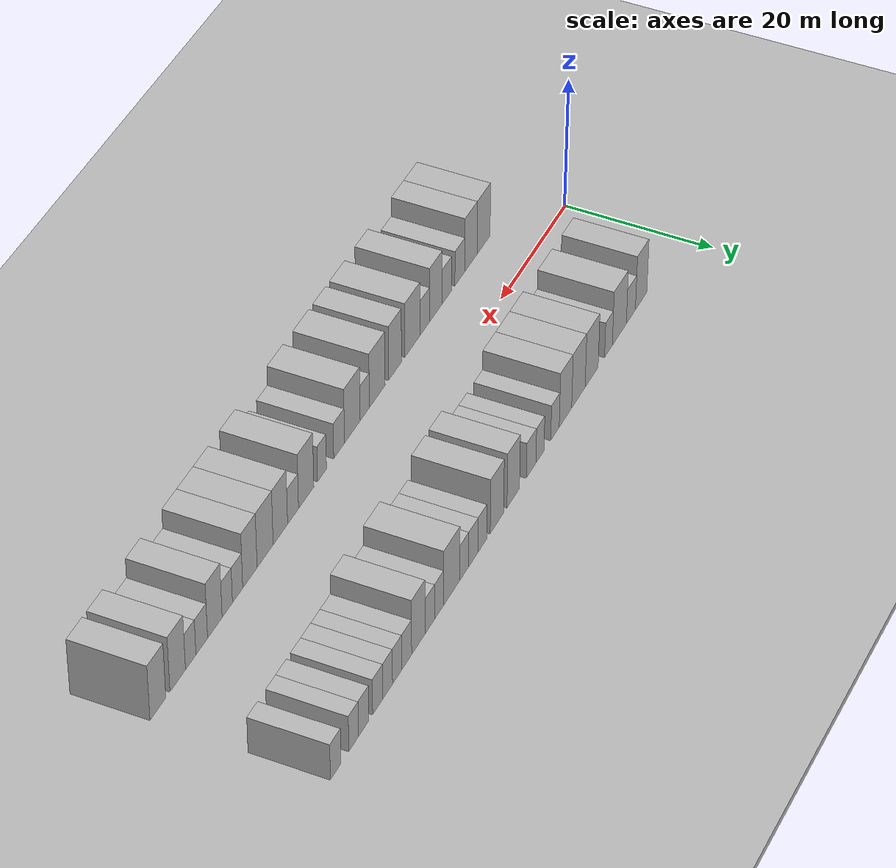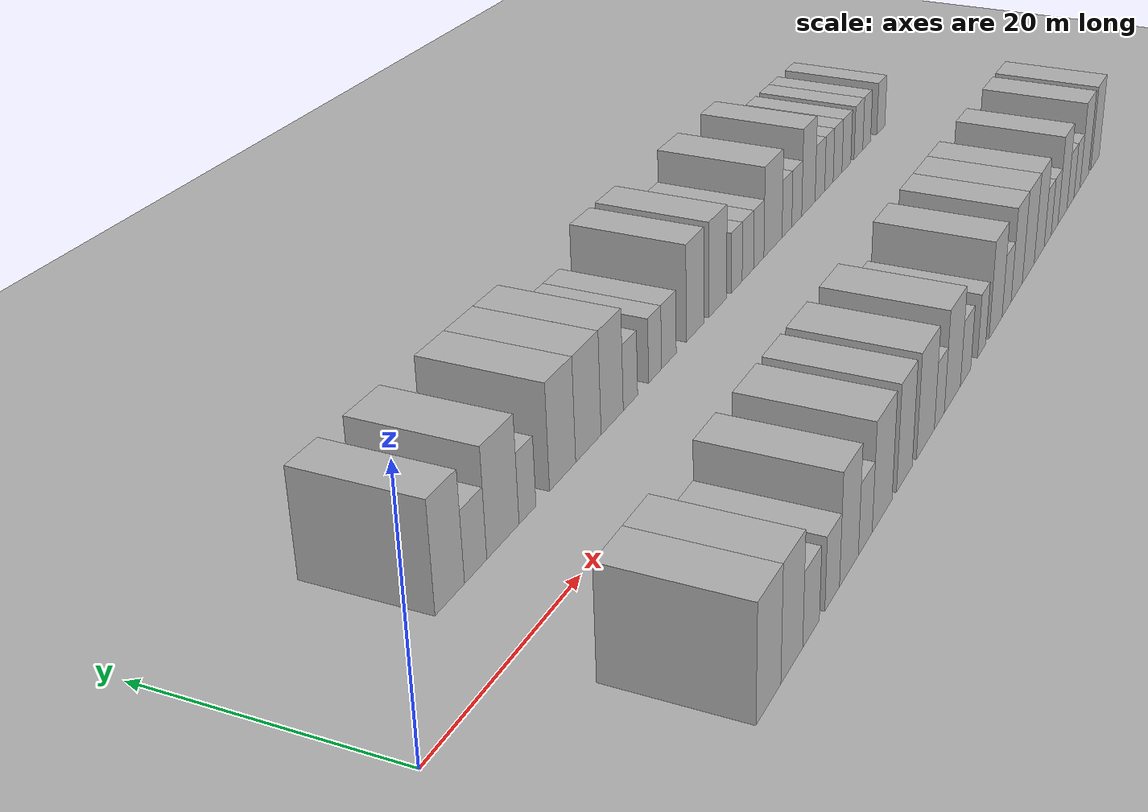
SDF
<sdf version="1.6">
 <world name="default">
  <include><name>ground_plane_1</name><uri>model://HANNAS_ground_plane</uri></include>
  <include>
   <name>ground_plane_2</name>
   <uri>model://HANNAS_ground_plane</uri>
   <pose>100 0 0  0 0 0</pose>
  </include>
  <model name="building_1">
   <static>1</static>
   <pose>13.8384 11.0000 0 0.000000 0.000000 1.570796</pose>
   <link name="link">
    <pose>0 0 4.50 0 0 0</pose>
    <collision name="collision"><geometry><box><size>10.0000 3.6767 9.0000</size></box></geometry></collision>
    <visual name="visual">
     <cast_shadows>0</cast_shadows>
     <geometry><box><size>10.0000 3.6767 9.0000</size></box></geometry>
     <material>
      <script>
       <uri>model://HANNAS_wall/materials/scripts</uri>
       <uri>model://HANNAS_wall/materials/textures</uri>
       <name>vrc/HANNAS_wall</name>
      </script>
     </material>
    </visual>
   </link>
  </model>
  <model name="building_2">
   <static>1</static>
   <pose>17.1283 11.0000 0 0.000000 0.000000 1.570796</pose>
   <link name="link">
    <pose>0 0 3.00 0 0 0</pose>
    <collision name="collision"><geometry><box><size>10.0000 2.9031 6.0000</size></box></geometry></collision>
    <visual name="visual">
     <cast_shadows>0</cast_shadows>
     <geometry><box><size>10.0000 2.9031 6.0000</size></box></geometry>
     <material>
      <script>
       <uri>model://HANNAS_wall/materials/scripts</uri>
       <uri>model://HANNAS_wall/materials/textures</uri>
       <name>vrc/HANNAS_wall</name>
      </script>
     </material>
    </visual>
   </link>
  </model>
  <model name="building_3">
   <static>1</static>
   <pose>20.7933 11.0000 0 0.000000 0.000000 1.570796</pose>
   <link name="link">
    <pose>0 0 4.50 0 0 0</pose>
    <collision name="collision"><geometry><box><size>10.0000 4.4269 9.0000</size></box></geometry></collision>
    <visual name="visual">
     <cast_shadows>0</cast_shadows>
     <geometry><box><size>10.0000 4.4269 9.0000</size></box></geometry>
     <material>
      <script>
       <uri>model://HANNAS_wall/materials/scripts</uri>
       <uri>model://HANNAS_wall/materials/textures</uri>
       <name>vrc/HANNAS_wall</name>
      </script>
     </material>
    </visual>
   </link>
  </model>
  <model name="building_4">
   <static>1</static>
   <pose>24.2196 11.0000 0 0.000000 0.000000 1.570796</pose>
   <link name="link">
    <pose>0 0 3.00 0 0 0</pose>
    <collision name="collision"><geometry><box><size>10.0000 2.4257 6.0000</size></box></geometry></collision>
    <visual name="visual">
     <cast_shadows>0</cast_shadows>
     <geometry><box><size>10.0000 2.4257 6.0000</size></box></geometry>
     <material>
      <script>
       <uri>model://HANNAS_wall/materials/scripts</uri>
       <uri>model://HANNAS_wall/materials/textures</uri>
       <name>vrc/HANNAS_wall</name>
      </script>
     </material>
    </visual>
   </link>
  </model>
  <model name="building_5">
   <static>1</static>
   <pose>29.4477 11.0000 0 0.000000 0.000000 1.570796</pose>
   <link name="link">
    <pose>0 0 4.50 0 0 0</pose>
    <collision name="collision"><geometry><box><size>10.0000 4.0304 9.0000</size></box></geometry></collision>
    <visual name="visual">
     <cast_shadows>0</cast_shadows>
     <geometry><box><size>10.0000 4.0304 9.0000</size></box></geometry>
     <material>
      <script>
       <uri>model://HANNAS_wall/materials/scripts</uri>
       <uri>model://HANNAS_wall/materials/textures</uri>
       <name>vrc/HANNAS_wall</name>
      </script>
     </material>
    </visual>
   </link>
  </model>
  <model name="building_6">
   <static>1</static>
   <pose>33.5247 11.0000 0 0.000000 0.000000 1.570796</pose>
   <link name="link">
    <pose>0 0 4.50 0 0 0</pose>
    <collision name="collision"><geometry><box><size>10.0000 4.1236 9.0000</size></box></geometry></collision>
    <visual name="visual">
     <cast_shadows>0</cast_shadows>
     <geometry><box><size>10.0000 4.1236 9.0000</size></box></geometry>
     <material>
      <script>
       <uri>model://HANNAS_wall/materials/scripts</uri>
       <uri>model://HANNAS_wall/materials/textures</uri>
       <name>vrc/HANNAS_wall</name>
      </script>
     </material>
    </visual>
   </link>
  </model>
  <model name="building_7">
   <static>1</static>
   <pose>37.4718 11.0000 0 0.000000 0.000000 1.570796</pose>
   <link name="link">
    <pose>0 0 4.50 0 0 0</pose>
    <collision name="collision"><geometry><box><size>10.0000 3.7705 9.0000</size></box></geometry></collision>
    <visual name="visual">
     <cast_shadows>0</cast_shadows>
     <geometry><box><size>10.0000 3.7705 9.0000</size></box></geometry>
     <material>
      <script>
       <uri>model://HANNAS_wall/materials/scripts</uri>
       <uri>model://HANNAS_wall/materials/textures</uri>
       <name>vrc/HANNAS_wall</name>
      </script>
     </material>
    </visual>
   </link>
  </model>
  <model name="building_8">
   <static>1</static>
   <pose>40.6298 11.0000 0 0.000000 0.000000 1.570796</pose>
   <link name="link">
    <pose>0 0 3.00 0 0 0</pose>
    <collision name="collision"><geometry><box><size>10.0000 2.5456 6.0000</size></box></geometry></collision>
    <visual name="visual">
     <cast_shadows>0</cast_shadows>
     <geometry><box><size>10.0000 2.5456 6.0000</size></box></geometry>
     <material>
      <script>
       <uri>model://HANNAS_wall/materials/scripts</uri>
       <uri>model://HANNAS_wall/materials/textures</uri>
       <name>vrc/HANNAS_wall</name>
      </script>
     </material>
    </visual>
   </link>
  </model>
  <model name="building_9">
   <static>1</static>
   <pose>45.1098 11.0000 0 0.000000 0.000000 1.570796</pose>
   <link name="link">
    <pose>0 0 3.00 0 0 0</pose>
    <collision name="collision"><geometry><box><size>10.0000 2.4144 6.0000</size></box></geometry></collision>
    <visual name="visual">
     <cast_shadows>0</cast_shadows>
     <geometry><box><size>10.0000 2.4144 6.0000</size></box></geometry>
     <material>
      <script>
       <uri>model://HANNAS_wall/materials/scripts</uri>
       <uri>model://HANNAS_wall/materials/textures</uri>
       <name>vrc/HANNAS_wall</name>
      </script>
     </material>
    </visual>
   </link>
  </model>
  <model name="building_10">
   <static>1</static>
   <pose>47.7311 11.0000 0 0.000000 0.000000 1.570796</pose>
   <link name="link">
    <pose>0 0 3.00 0 0 0</pose>
    <collision name="collision"><geometry><box><size>10.0000 2.8282 6.0000</size></box></geometry></collision>
    <visual name="visual">
     <cast_shadows>0</cast_shadows>
     <geometry><box><size>10.0000 2.8282 6.0000</size></box></geometry>
     <material>
      <script>
       <uri>model://HANNAS_wall/materials/scripts</uri>
       <uri>model://HANNAS_wall/materials/textures</uri>
       <name>vrc/HANNAS_wall</name>
      </script>
     </material>
    </visual>
   </link>
  </model>
  <model name="building_11">
   <static>1</static>
   <pose>52.9642 11.0000 0 0.000000 0.000000 1.570796</pose>
   <link name="link">
    <pose>0 0 4.50 0 0 0</pose>
    <collision name="collision"><geometry><box><size>10.0000 3.6381 9.0000</size></box></geometry></collision>
    <visual name="visual">
     <cast_shadows>0</cast_shadows>
     <geometry><box><size>10.0000 3.6381 9.0000</size></box></geometry>
     <material>
      <script>
       <uri>model://HANNAS_wall/materials/scripts</uri>
       <uri>model://HANNAS_wall/materials/textures</uri>
       <name>vrc/HANNAS_wall</name>
      </script>
     </material>
    </visual>
   </link>
  </model>
  <model name="building_12">
   <static>1</static>
   <pose>57.6949 11.0000 0 0.000000 0.000000 1.570796</pose>
   <link name="link">
    <pose>0 0 4.50 0 0 0</pose>
    <collision name="collision"><geometry><box><size>10.0000 3.8232 9.0000</size></box></geometry></collision>
    <visual name="visual">
     <cast_shadows>0</cast_shadows>
     <geometry><box><size>10.0000 3.8232 9.0000</size></box></geometry>
     <material>
      <script>
       <uri>model://HANNAS_wall/materials/scripts</uri>
       <uri>model://HANNAS_wall/materials/textures</uri>
       <name>vrc/HANNAS_wall</name>
      </script>
     </material>
    </visual>
   </link>
  </model>
  <model name="building_13">
   <static>1</static>
   <pose>61.8436 11.0000 0 0.000000 0.000000 1.570796</pose>
   <link name="link">
    <pose>0 0 3.00 0 0 0</pose>
    <collision name="collision"><geometry><box><size>10.0000 2.4743 6.0000</size></box></geometry></collision>
    <visual name="visual">
     <cast_shadows>0</cast_shadows>
     <geometry><box><size>10.0000 2.4743 6.0000</size></box></geometry>
     <material>
      <script>
       <uri>model://HANNAS_wall/materials/scripts</uri>
       <uri>model://HANNAS_wall/materials/textures</uri>
       <name>vrc/HANNAS_wall</name>
      </script>
     </material>
    </visual>
   </link>
  </model>
  <model name="building_14">
   <static>1</static>
   <pose>64.3971 11.0000 0 0.000000 0.000000 1.570796</pose>
   <link name="link">
    <pose>0 0 3.00 0 0 0</pose>
    <collision name="collision"><geometry><box><size>10.0000 2.6326 6.0000</size></box></geometry></collision>
    <visual name="visual">
     <cast_shadows>0</cast_shadows>
     <geometry><box><size>10.0000 2.6326 6.0000</size></box></geometry>
     <material>
      <script>
       <uri>model://HANNAS_wall/materials/scripts</uri>
       <uri>model://HANNAS_wall/materials/textures</uri>
       <name>vrc/HANNAS_wall</name>
      </script>
     </material>
    </visual>
   </link>
  </model>
  <model name="building_15">
   <static>1</static>
   <pose>66.9494 11.0000 0 0.000000 0.000000 1.570796</pose>
   <link name="link">
    <pose>0 0 3.00 0 0 0</pose>
    <collision name="collision"><geometry><box><size>10.0000 2.4721 6.0000</size></box></geometry></collision>
    <visual name="visual">
     <cast_shadows>0</cast_shadows>
     <geometry><box><size>10.0000 2.4721 6.0000</size></box></geometry>
     <material>
      <script>
       <uri>model://HANNAS_wall/materials/scripts</uri>
       <uri>model://HANNAS_wall/materials/textures</uri>
       <name>vrc/HANNAS_wall</name>
      </script>
     </material>
    </visual>
   </link>
  </model>
  <model name="building_16">
   <static>1</static>
   <pose>70.4170 11.0000 0 0.000000 0.000000 1.570796</pose>
   <link name="link">
    <pose>0 0 4.50 0 0 0</pose>
    <collision name="collision"><geometry><box><size>10.0000 4.4631 9.0000</size></box></geometry></collision>
    <visual name="visual">
     <cast_shadows>0</cast_shadows>
     <geometry><box><size>10.0000 4.4631 9.0000</size></box></geometry>
     <material>
      <script>
       <uri>model://HANNAS_wall/materials/scripts</uri>
       <uri>model://HANNAS_wall/materials/textures</uri>
       <name>vrc/HANNAS_wall</name>
      </script>
     </material>
    </visual>
   </link>
  </model>
  <model name="building_17">
   <static>1</static>
   <pose>73.8974 11.0000 0 0.000000 0.000000 1.570796</pose>
   <link name="link">
    <pose>0 0 3.00 0 0 0</pose>
    <collision name="collision"><geometry><box><size>10.0000 2.4979 6.0000</size></box></geometry></collision>
    <visual name="visual">
     <cast_shadows>0</cast_shadows>
     <geometry><box><size>10.0000 2.4979 6.0000</size></box></geometry>
     <material>
      <script>
       <uri>model://HANNAS_wall/materials/scripts</uri>
       <uri>model://HANNAS_wall/materials/textures</uri>
       <name>vrc/HANNAS_wall</name>
      </script>
     </material>
    </visual>
   </link>
  </model>
  <model name="building_18">
   <static>1</static>
   <pose>76.4460 11.0000 0 0.000000 0.000000 1.570796</pose>
   <link name="link">
    <pose>0 0 3.00 0 0 0</pose>
    <collision name="collision"><geometry><box><size>10.0000 2.5992 6.0000</size></box></geometry></collision>
    <visual name="visual">
     <cast_shadows>0</cast_shadows>
     <geometry><box><size>10.0000 2.5992 6.0000</size></box></geometry>
     <material>
      <script>
       <uri>model://HANNAS_wall/materials/scripts</uri>
       <uri>model://HANNAS_wall/materials/textures</uri>
       <name>vrc/HANNAS_wall</name>
      </script>
     </material>
    </visual>
   </link>
  </model>
  <model name="building_19">
   <static>1</static>
   <pose>79.5519 11.0000 0 0.000000 0.000000 1.570796</pose>
   <link name="link">
    <pose>0 0 4.50 0 0 0</pose>
    <collision name="collision"><geometry><box><size>10.0000 3.6126 9.0000</size></box></geometry></collision>
    <visual name="visual">
     <cast_shadows>0</cast_shadows>
     <geometry><box><size>10.0000 3.6126 9.0000</size></box></geometry>
     <material>
      <script>
       <uri>model://HANNAS_wall/materials/scripts</uri>
       <uri>model://HANNAS_wall/materials/textures</uri>
       <name>vrc/HANNAS_wall</name>
      </script>
     </material>
    </visual>
   </link>
  </model>
  <model name="building_20">
   <static>1</static>
   <pose>82.6982 11.0000 0 0.000000 0.000000 1.570796</pose>
   <link name="link">
    <pose>0 0 3.00 0 0 0</pose>
    <collision name="collision"><geometry><box><size>10.0000 2.6799 6.0000</size></box></geometry></collision>
    <visual name="visual">
     <cast_shadows>0</cast_shadows>
     <geometry><box><size>10.0000 2.6799 6.0000</size></box></geometry>
     <material>
      <script>
       <uri>model://HANNAS_wall/materials/scripts</uri>
       <uri>model://HANNAS_wall/materials/textures</uri>
       <name>vrc/HANNAS_wall</name>
      </script>
     </material>
    </visual>
   </link>
  </model>
  <model name="building_21">
   <static>1</static>
   <pose>85.2467 11.0000 0 0.000000 0.000000 1.570796</pose>
   <link name="link">
    <pose>0 0 3.00 0 0 0</pose>
    <collision name="collision"><geometry><box><size>10.0000 2.4171 6.0000</size></box></geometry></collision>
    <visual name="visual">
     <cast_shadows>0</cast_shadows>
     <geometry><box><size>10.0000 2.4171 6.0000</size></box></geometry>
     <material>
      <script>
       <uri>model://HANNAS_wall/materials/scripts</uri>
       <uri>model://HANNAS_wall/materials/textures</uri>
       <name>vrc/HANNAS_wall</name>
      </script>
     </material>
    </visual>
   </link>
  </model>
  <model name="building_22">
   <static>1</static>
   <pose>87.7346 11.0000 0 0.000000 0.000000 1.570796</pose>
   <link name="link">
    <pose>0 0 3.00 0 0 0</pose>
    <collision name="collision"><geometry><box><size>10.0000 2.5588 6.0000</size></box></geometry></collision>
    <visual name="visual">
     <cast_shadows>0</cast_shadows>
     <geometry><box><size>10.0000 2.5588 6.0000</size></box></geometry>
     <material>
      <script>
       <uri>model://HANNAS_wall/materials/scripts</uri>
       <uri>model://HANNAS_wall/materials/textures</uri>
       <name>vrc/HANNAS_wall</name>
      </script>
     </material>
    </visual>
   </link>
  </model>
  <model name="building_23">
   <static>1</static>
   <pose>90.3410 11.0000 0 0.000000 0.000000 1.570796</pose>
   <link name="link">
    <pose>0 0 3.00 0 0 0</pose>
    <collision name="collision"><geometry><box><size>10.0000 2.6539 6.0000</size></box></geometry></collision>
    <visual name="visual">
     <cast_shadows>0</cast_shadows>
     <geometry><box><size>10.0000 2.6539 6.0000</size></box></geometry>
     <material>
      <script>
       <uri>model://HANNAS_wall/materials/scripts</uri>
       <uri>model://HANNAS_wall/materials/textures</uri>
       <name>vrc/HANNAS_wall</name>
      </script>
     </material>
    </visual>
   </link>
  </model>
  <model name="building_24">
   <static>1</static>
   <pose>94.0179 11.0000 0 0.000000 0.000000 1.570796</pose>
   <link name="link">
    <pose>0 0 3.00 0 0 0</pose>
    <collision name="collision"><geometry><box><size>10.0000 2.7001 6.0000</size></box></geometry></collision>
    <visual name="visual">
     <cast_shadows>0</cast_shadows>
     <geometry><box><size>10.0000 2.7001 6.0000</size></box></geometry>
     <material>
      <script>
       <uri>model://HANNAS_wall/materials/scripts</uri>
       <uri>model://HANNAS_wall/materials/textures</uri>
       <name>vrc/HANNAS_wall</name>
      </script>
     </material>
    </visual>
   </link>
  </model>
  <model name="building_25">
   <static>1</static>
   <pose>96.6080 11.0000 0 0.000000 0.000000 1.570796</pose>
   <link name="link">
    <pose>0 0 3.00 0 0 0</pose>
    <collision name="collision"><geometry><box><size>10.0000 2.4800 6.0000</size></box></geometry></collision>
    <visual name="visual">
     <cast_shadows>0</cast_shadows>
     <geometry><box><size>10.0000 2.4800 6.0000</size></box></geometry>
     <material>
      <script>
       <uri>model://HANNAS_wall/materials/scripts</uri>
       <uri>model://HANNAS_wall/materials/textures</uri>
       <name>vrc/HANNAS_wall</name>
      </script>
     </material>
    </visual>
   </link>
  </model>
  <model name="building_26">
   <static>1</static>
   <pose>101.1926 11.0000 0 0.000000 0.000000 1.570796</pose>
   <link name="link">
    <pose>0 0 3.00 0 0 0</pose>
    <collision name="collision"><geometry><box><size>10.0000 2.6893 6.0000</size></box></geometry></collision>
    <visual name="visual">
     <cast_shadows>0</cast_shadows>
     <geometry><box><size>10.0000 2.6893 6.0000</size></box></geometry>
     <material>
      <script>
       <uri>model://HANNAS_wall/materials/scripts</uri>
       <uri>model://HANNAS_wall/materials/textures</uri>
       <name>vrc/HANNAS_wall</name>
      </script>
     </material>
    </visual>
   </link>
  </model>
  <model name="building_53">
   <static>1</static>
   <pose>11.9932 -11.0000 0 0.000000 0.000000 1.570796</pose>
   <link name="link">
    <pose>0 0 4.50 0 0 0</pose>
    <collision name="collision"><geometry><box><size>10.0000 3.9865 9.0000</size></box></geometry></collision>
    <visual name="visual">
     <cast_shadows>0</cast_shadows>
     <geometry><box><size>10.0000 3.9865 9.0000</size></box></geometry>
     <material>
      <script>
       <uri>model://HANNAS_wall/materials/scripts</uri>
       <uri>model://HANNAS_wall/materials/textures</uri>
       <name>vrc/HANNAS_wall</name>
      </script>
     </material>
    </visual>
   </link>
  </model>
  <model name="building_54">
   <static>1</static>
   <pose>15.8434 -11.0000 0 0.000000 0.000000 1.570796</pose>
   <link name="link">
    <pose>0 0 4.50 0 0 0</pose>
    <collision name="collision"><geometry><box><size>10.0000 3.7139 9.0000</size></box></geometry></collision>
    <visual name="visual">
     <cast_shadows>0</cast_shadows>
     <geometry><box><size>10.0000 3.7139 9.0000</size></box></geometry>
     <material>
      <script>
       <uri>model://HANNAS_wall/materials/scripts</uri>
       <uri>model://HANNAS_wall/materials/textures</uri>
       <name>vrc/HANNAS_wall</name>
      </script>
     </material>
    </visual>
   </link>
  </model>
  <model name="building_55">
   <static>1</static>
   <pose>19.1945 -11.0000 0 0.000000 0.000000 1.570796</pose>
   <link name="link">
    <pose>0 0 3.00 0 0 0</pose>
    <collision name="collision"><geometry><box><size>10.0000 2.9883 6.0000</size></box></geometry></collision>
    <visual name="visual">
     <cast_shadows>0</cast_shadows>
     <geometry><box><size>10.0000 2.9883 6.0000</size></box></geometry>
     <material>
      <script>
       <uri>model://HANNAS_wall/materials/scripts</uri>
       <uri>model://HANNAS_wall/materials/textures</uri>
       <name>vrc/HANNAS_wall</name>
      </script>
     </material>
    </visual>
   </link>
  </model>
  <model name="building_56">
   <static>1</static>
   <pose>23.0747 -11.0000 0 0.000000 0.000000 1.570796</pose>
   <link name="link">
    <pose>0 0 3.00 0 0 0</pose>
    <collision name="collision"><geometry><box><size>10.0000 2.7720 6.0000</size></box></geometry></collision>
    <visual name="visual">
     <cast_shadows>0</cast_shadows>
     <geometry><box><size>10.0000 2.7720 6.0000</size></box></geometry>
     <material>
      <script>
       <uri>model://HANNAS_wall/materials/scripts</uri>
       <uri>model://HANNAS_wall/materials/textures</uri>
       <name>vrc/HANNAS_wall</name>
      </script>
     </material>
    </visual>
   </link>
  </model>
  <model name="building_57">
   <static>1</static>
   <pose>26.3290 -11.0000 0 0.000000 0.000000 1.570796</pose>
   <link name="link">
    <pose>0 0 4.50 0 0 0</pose>
    <collision name="collision"><geometry><box><size>10.0000 3.7367 9.0000</size></box></geometry></collision>
    <visual name="visual">
     <cast_shadows>0</cast_shadows>
     <geometry><box><size>10.0000 3.7367 9.0000</size></box></geometry>
     <material>
      <script>
       <uri>model://HANNAS_wall/materials/scripts</uri>
       <uri>model://HANNAS_wall/materials/textures</uri>
       <name>vrc/HANNAS_wall</name>
      </script>
     </material>
    </visual>
   </link>
  </model>
  <model name="building_58">
   <static>1</static>
   <pose>29.6347 -11.0000 0 0.000000 0.000000 1.570796</pose>
   <link name="link">
    <pose>0 0 3.00 0 0 0</pose>
    <collision name="collision"><geometry><box><size>10.0000 2.8746 6.0000</size></box></geometry></collision>
    <visual name="visual">
     <cast_shadows>0</cast_shadows>
     <geometry><box><size>10.0000 2.8746 6.0000</size></box></geometry>
     <material>
      <script>
       <uri>model://HANNAS_wall/materials/scripts</uri>
       <uri>model://HANNAS_wall/materials/textures</uri>
       <name>vrc/HANNAS_wall</name>
      </script>
     </material>
    </visual>
   </link>
  </model>
  <model name="building_59">
   <static>1</static>
   <pose>33.2428 -11.0000 0 0.000000 0.000000 1.570796</pose>
   <link name="link">
    <pose>0 0 4.50 0 0 0</pose>
    <collision name="collision"><geometry><box><size>10.0000 4.3415 9.0000</size></box></geometry></collision>
    <visual name="visual">
     <cast_shadows>0</cast_shadows>
     <geometry><box><size>10.0000 4.3415 9.0000</size></box></geometry>
     <material>
      <script>
       <uri>model://HANNAS_wall/materials/scripts</uri>
       <uri>model://HANNAS_wall/materials/textures</uri>
       <name>vrc/HANNAS_wall</name>
      </script>
     </material>
    </visual>
   </link>
  </model>
  <model name="building_60">
   <static>1</static>
   <pose>38.2519 -11.0000 0 0.000000 0.000000 1.570796</pose>
   <link name="link">
    <pose>0 0 4.50 0 0 0</pose>
    <collision name="collision"><geometry><box><size>10.0000 3.6767 9.0000</size></box></geometry></collision>
    <visual name="visual">
     <cast_shadows>0</cast_shadows>
     <geometry><box><size>10.0000 3.6767 9.0000</size></box></geometry>
     <material>
      <script>
       <uri>model://HANNAS_wall/materials/scripts</uri>
       <uri>model://HANNAS_wall/materials/textures</uri>
       <name>vrc/HANNAS_wall</name>
      </script>
     </material>
    </visual>
   </link>
  </model>
  <model name="building_61">
   <static>1</static>
   <pose>43.3218 -11.0000 0 0.000000 0.000000 1.570796</pose>
   <link name="link">
    <pose>0 0 4.50 0 0 0</pose>
    <collision name="collision"><geometry><box><size>10.0000 4.4631 9.0000</size></box></geometry></collision>
    <visual name="visual">
     <cast_shadows>0</cast_shadows>
     <geometry><box><size>10.0000 4.4631 9.0000</size></box></geometry>
     <material>
      <script>
       <uri>model://HANNAS_wall/materials/scripts</uri>
       <uri>model://HANNAS_wall/materials/textures</uri>
       <name>vrc/HANNAS_wall</name>
      </script>
     </material>
    </visual>
   </link>
  </model>
  <model name="building_62">
   <static>1</static>
   <pose>46.8471 -11.0000 0 0.000000 0.000000 1.570796</pose>
   <link name="link">
    <pose>0 0 3.00 0 0 0</pose>
    <collision name="collision"><geometry><box><size>10.0000 2.5875 6.0000</size></box></geometry></collision>
    <visual name="visual">
     <cast_shadows>0</cast_shadows>
     <geometry><box><size>10.0000 2.5875 6.0000</size></box></geometry>
     <material>
      <script>
       <uri>model://HANNAS_wall/materials/scripts</uri>
       <uri>model://HANNAS_wall/materials/textures</uri>
       <name>vrc/HANNAS_wall</name>
      </script>
     </material>
    </visual>
   </link>
  </model>
  <model name="building_63">
   <static>1</static>
   <pose>50.3138 -11.0000 0 0.000000 0.000000 1.570796</pose>
   <link name="link">
    <pose>0 0 4.50 0 0 0</pose>
    <collision name="collision"><geometry><box><size>10.0000 4.3460 9.0000</size></box></geometry></collision>
    <visual name="visual">
     <cast_shadows>0</cast_shadows>
     <geometry><box><size>10.0000 4.3460 9.0000</size></box></geometry>
     <material>
      <script>
       <uri>model://HANNAS_wall/materials/scripts</uri>
       <uri>model://HANNAS_wall/materials/textures</uri>
       <name>vrc/HANNAS_wall</name>
      </script>
     </material>
    </visual>
   </link>
  </model>
  <model name="building_64">
   <static>1</static>
   <pose>53.9672 -11.0000 0 0.000000 0.000000 1.570796</pose>
   <link name="link">
    <pose>0 0 3.00 0 0 0</pose>
    <collision name="collision"><geometry><box><size>10.0000 2.9609 6.0000</size></box></geometry></collision>
    <visual name="visual">
     <cast_shadows>0</cast_shadows>
     <geometry><box><size>10.0000 2.9609 6.0000</size></box></geometry>
     <material>
      <script>
       <uri>model://HANNAS_wall/materials/scripts</uri>
       <uri>model://HANNAS_wall/materials/textures</uri>
       <name>vrc/HANNAS_wall</name>
      </script>
     </material>
    </visual>
   </link>
  </model>
  <model name="building_65">
   <static>1</static>
   <pose>58.6619 -11.0000 0 0.000000 0.000000 1.570796</pose>
   <link name="link">
    <pose>0 0 3.00 0 0 0</pose>
    <collision name="collision"><geometry><box><size>10.0000 2.4284 6.0000</size></box></geometry></collision>
    <visual name="visual">
     <cast_shadows>0</cast_shadows>
     <geometry><box><size>10.0000 2.4284 6.0000</size></box></geometry>
     <material>
      <script>
       <uri>model://HANNAS_wall/materials/scripts</uri>
       <uri>model://HANNAS_wall/materials/textures</uri>
       <name>vrc/HANNAS_wall</name>
      </script>
     </material>
    </visual>
   </link>
  </model>
  <model name="building_66">
   <static>1</static>
   <pose>62.9275 -11.0000 0 0.000000 0.000000 1.570796</pose>
   <link name="link">
    <pose>0 0 4.50 0 0 0</pose>
    <collision name="collision"><geometry><box><size>10.0000 4.1030 9.0000</size></box></geometry></collision>
    <visual name="visual">
     <cast_shadows>0</cast_shadows>
     <geometry><box><size>10.0000 4.1030 9.0000</size></box></geometry>
     <material>
      <script>
       <uri>model://HANNAS_wall/materials/scripts</uri>
       <uri>model://HANNAS_wall/materials/textures</uri>
       <name>vrc/HANNAS_wall</name>
      </script>
     </material>
    </visual>
   </link>
  </model>
  <model name="building_67">
   <static>1</static>
   <pose>66.4387 -11.0000 0 0.000000 0.000000 1.570796</pose>
   <link name="link">
    <pose>0 0 3.00 0 0 0</pose>
    <collision name="collision"><geometry><box><size>10.0000 2.9193 6.0000</size></box></geometry></collision>
    <visual name="visual">
     <cast_shadows>0</cast_shadows>
     <geometry><box><size>10.0000 2.9193 6.0000</size></box></geometry>
     <material>
      <script>
       <uri>model://HANNAS_wall/materials/scripts</uri>
       <uri>model://HANNAS_wall/materials/textures</uri>
       <name>vrc/HANNAS_wall</name>
      </script>
     </material>
    </visual>
   </link>
  </model>
  <model name="building_68">
   <static>1</static>
   <pose>69.8019 -11.0000 0 0.000000 0.000000 1.570796</pose>
   <link name="link">
    <pose>0 0 4.50 0 0 0</pose>
    <collision name="collision"><geometry><box><size>10.0000 3.8072 9.0000</size></box></geometry></collision>
    <visual name="visual">
     <cast_shadows>0</cast_shadows>
     <geometry><box><size>10.0000 3.8072 9.0000</size></box></geometry>
     <material>
      <script>
       <uri>model://HANNAS_wall/materials/scripts</uri>
       <uri>model://HANNAS_wall/materials/textures</uri>
       <name>vrc/HANNAS_wall</name>
      </script>
     </material>
    </visual>
   </link>
  </model>
  <model name="building_69">
   <static>1</static>
   <pose>73.8009 -11.0000 0 0.000000 0.000000 1.570796</pose>
   <link name="link">
    <pose>0 0 4.50 0 0 0</pose>
    <collision name="collision"><geometry><box><size>10.0000 4.1908 9.0000</size></box></geometry></collision>
    <visual name="visual">
     <cast_shadows>0</cast_shadows>
     <geometry><box><size>10.0000 4.1908 9.0000</size></box></geometry>
     <material>
      <script>
       <uri>model://HANNAS_wall/materials/scripts</uri>
       <uri>model://HANNAS_wall/materials/textures</uri>
       <name>vrc/HANNAS_wall</name>
      </script>
     </material>
    </visual>
   </link>
  </model>
  <model name="building_70">
   <static>1</static>
   <pose>77.7517 -11.0000 0 0.000000 0.000000 1.570796</pose>
   <link name="link">
    <pose>0 0 4.50 0 0 0</pose>
    <collision name="collision"><geometry><box><size>10.0000 3.7107 9.0000</size></box></geometry></collision>
    <visual name="visual">
     <cast_shadows>0</cast_shadows>
     <geometry><box><size>10.0000 3.7107 9.0000</size></box></geometry>
     <material>
      <script>
       <uri>model://HANNAS_wall/materials/scripts</uri>
       <uri>model://HANNAS_wall/materials/textures</uri>
       <name>vrc/HANNAS_wall</name>
      </script>
     </material>
    </visual>
   </link>
  </model>
  <model name="building_71">
   <static>1</static>
   <pose>80.9229 -11.0000 0 0.000000 0.000000 1.570796</pose>
   <link name="link">
    <pose>0 0 3.00 0 0 0</pose>
    <collision name="collision"><geometry><box><size>10.0000 2.6317 6.0000</size></box></geometry></collision>
    <visual name="visual">
     <cast_shadows>0</cast_shadows>
     <geometry><box><size>10.0000 2.6317 6.0000</size></box></geometry>
     <material>
      <script>
       <uri>model://HANNAS_wall/materials/scripts</uri>
       <uri>model://HANNAS_wall/materials/textures</uri>
       <name>vrc/HANNAS_wall</name>
      </script>
     </material>
    </visual>
   </link>
  </model>
  <model name="building_72">
   <static>1</static>
   <pose>83.5532 -11.0000 0 0.000000 0.000000 1.570796</pose>
   <link name="link">
    <pose>0 0 3.00 0 0 0</pose>
    <collision name="collision"><geometry><box><size>10.0000 2.6289 6.0000</size></box></geometry></collision>
    <visual name="visual">
     <cast_shadows>0</cast_shadows>
     <geometry><box><size>10.0000 2.6289 6.0000</size></box></geometry>
     <material>
      <script>
       <uri>model://HANNAS_wall/materials/scripts</uri>
       <uri>model://HANNAS_wall/materials/textures</uri>
       <name>vrc/HANNAS_wall</name>
      </script>
     </material>
    </visual>
   </link>
  </model>
  <model name="building_73">
   <static>1</static>
   <pose>86.6988 -11.0000 0 0.000000 0.000000 1.570796</pose>
   <link name="link">
    <pose>0 0 4.50 0 0 0</pose>
    <collision name="collision"><geometry><box><size>10.0000 3.6622 9.0000</size></box></geometry></collision>
    <visual name="visual">
     <cast_shadows>0</cast_shadows>
     <geometry><box><size>10.0000 3.6622 9.0000</size></box></geometry>
     <material>
      <script>
       <uri>model://HANNAS_wall/materials/scripts</uri>
       <uri>model://HANNAS_wall/materials/textures</uri>
       <name>vrc/HANNAS_wall</name>
      </script>
     </material>
    </visual>
   </link>
  </model>
  <model name="building_74">
   <static>1</static>
   <pose>89.9792 -11.0000 0 0.000000 0.000000 1.570796</pose>
   <link name="link">
    <pose>0 0 3.00 0 0 0</pose>
    <collision name="collision"><geometry><box><size>10.0000 2.8986 6.0000</size></box></geometry></collision>
    <visual name="visual">
     <cast_shadows>0</cast_shadows>
     <geometry><box><size>10.0000 2.8986 6.0000</size></box></geometry>
     <material>
      <script>
       <uri>model://HANNAS_wall/materials/scripts</uri>
       <uri>model://HANNAS_wall/materials/textures</uri>
       <name>vrc/HANNAS_wall</name>
      </script>
     </material>
    </visual>
   </link>
  </model>
  <model name="building_75">
   <static>1</static>
   <pose>92.7208 -11.0000 0 0.000000 0.000000 1.570796</pose>
   <link name="link">
    <pose>0 0 3.00 0 0 0</pose>
    <collision name="collision"><geometry><box><size>10.0000 2.5847 6.0000</size></box></geometry></collision>
    <visual name="visual">
     <cast_shadows>0</cast_shadows>
     <geometry><box><size>10.0000 2.5847 6.0000</size></box></geometry>
     <material>
      <script>
       <uri>model://HANNAS_wall/materials/scripts</uri>
       <uri>model://HANNAS_wall/materials/textures</uri>
       <name>vrc/HANNAS_wall</name>
      </script>
     </material>
    </visual>
   </link>
  </model>
  <model name="building_76">
   <static>1</static>
   <pose>95.9202 -11.0000 0 0.000000 0.000000 1.570796</pose>
   <link name="link">
    <pose>0 0 4.50 0 0 0</pose>
    <collision name="collision"><geometry><box><size>10.0000 3.8140 9.0000</size></box></geometry></collision>
    <visual name="visual">
     <cast_shadows>0</cast_shadows>
     <geometry><box><size>10.0000 3.8140 9.0000</size></box></geometry>
     <material>
      <script>
       <uri>model://HANNAS_wall/materials/scripts</uri>
       <uri>model://HANNAS_wall/materials/textures</uri>
       <name>vrc/HANNAS_wall</name>
      </script>
     </material>
    </visual>
   </link>
  </model>
  <model name="building_77">
   <static>1</static>
   <pose>100.7495 -11.0000 0 0.000000 0.000000 1.570796</pose>
   <link name="link">
    <pose>0 0 4.50 0 0 0</pose>
    <collision name="collision"><geometry><box><size>10.0000 3.8447 9.0000</size></box></geometry></collision>
    <visual name="visual">
     <cast_shadows>0</cast_shadows>
     <geometry><box><size>10.0000 3.8447 9.0000</size></box></geometry>
     <material>
      <script>
       <uri>model://HANNAS_wall/materials/scripts</uri>
       <uri>model://HANNAS_wall/materials/textures</uri>
       <name>vrc/HANNAS_wall</name>
      </script>
     </material>
    </visual>
   </link>
  </model>
 </world>
</sdf>
